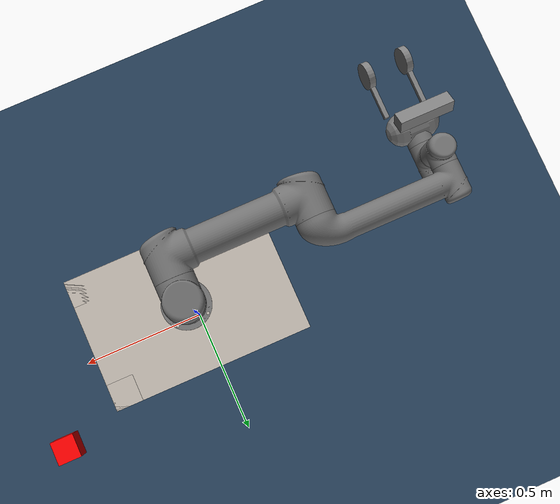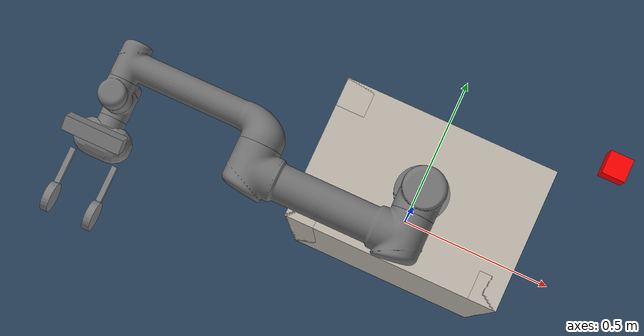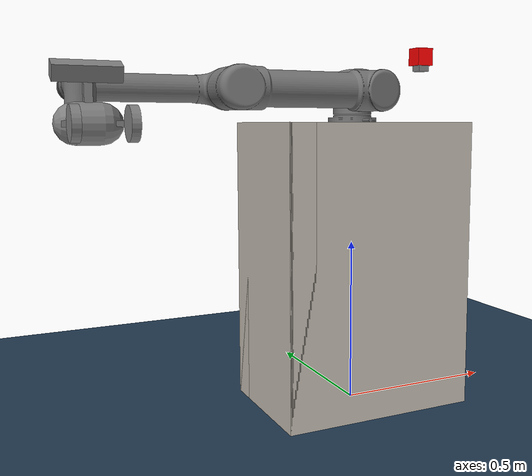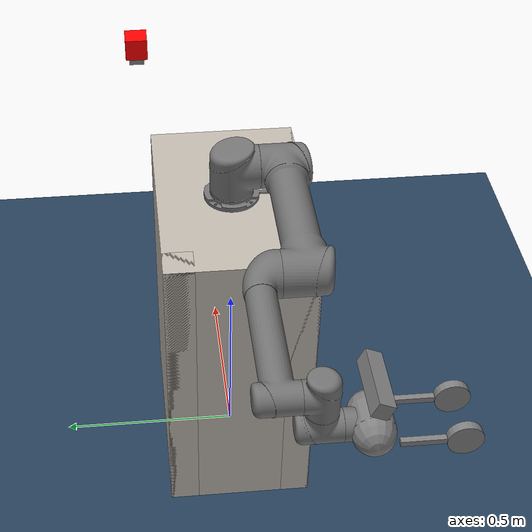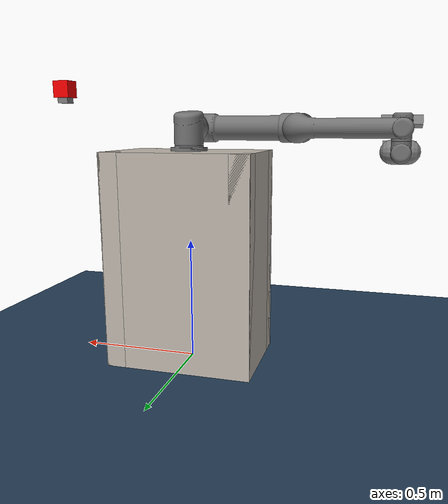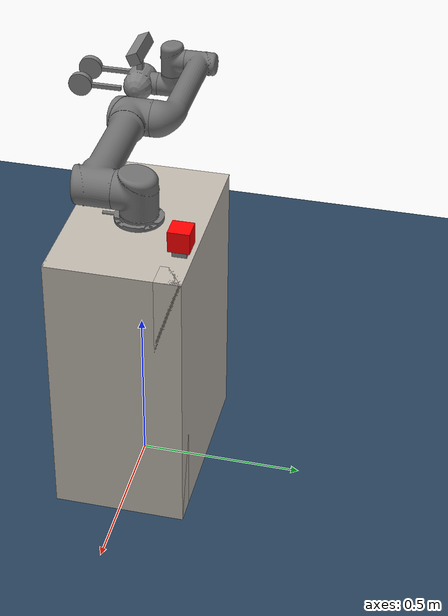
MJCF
<mujoco model="ur5gripper">
    <compiler angle="radian"
              inertiafromgeom="true"
              texturedir="textures/"
              meshdir="mesh/visual/"/>
    <option timestep="1e-2"
            iterations="30"
            tolerance="1e-10"
            impratio="20"/>
    <size njmax="600" nconmax="150" nstack="300000"/>

    <default>
        <site rgba="0.8 0.6 0.7 0.3" type="ellipsoid" group="3"/>
        <geom contype='1' conaffinity='1' condim='4'  margin="1e-3" solref=".01 1" solimp=".99 .99 .01" />
        <joint armature="0.01" damping=".1"/>
        <default class="UR5">
            <joint damping='65'/>
        </default>
        <default class="UR5e">
            <joint damping='45'/>
        </default>
        <default class="GRIPPER">
            <joint damping='15'/>
        </default>
    </default>

    <visual>
        <map fogstart="3" fogend="5" znear="0.05"/>
        <quality shadowsize="2048"/>
        <scale framelength="0.1"
               framewidth="0.005"
               contactwidth="0.1"
               contactheight="0.005"
               forcewidth="0.01"
               />
    </visual>

    <!--Assets-->
    <asset>
        <!--Meshes-->
        <mesh name="base"           file="base.stl"     />
        <mesh name="shoulder"       file="shoulder.stl" />
        <mesh name="upperarm"       file="upperarm.stl" />
        <mesh name="forearm"        file="forearm.stl"  />
        <mesh name="wrist1"         file="wrist1.stl"   />
        <mesh name="wrist2"         file="wrist2.stl"   />
        <mesh name="wrist3"         file="wrist3.stl"   />
        <mesh name="gripperpalm"    file="palm.STL"     />
        <mesh name="link_0"         file="link_0.STL"   />
        <mesh name="link_1"         file="link_1.STL"   />
        <mesh name="link_2"         file="link_2.STL"   />
        <mesh name="link_3"         file="link_3.STL"   />
        <!--Textures-->
        <texture name="ur5_tex"     type="2d"       builtin="flat" height="32" width="32" rgb1="0.45 0.45 0.45" />
        <texture name="gripper_tex" type="2d"       builtin="flat" height="32" width="32" rgb1="0.45 0.45 0.45" rgb2="0 0 0"/>
        <texture name="bench_tex"   type="2d"       builtin="flat" height="32" width="32" rgb1="0.7 0.7 0.7" />
        <texture name="sky_tex"     type="skybox"   builtin="gradient" width="100" height="100" rgb1="1 1 1" rgb2="0.3 0.3 0.8" />
        <texture name="texgeom"     type="cube"     builtin="flat" mark="cross" width="127" height="1278" rgb1="0.8 0.6 0.4" rgb2="0.8 0.6 0.4" markrgb="1 1 1" random="0.01" />
        <texture name="floor_tex"   type="2d"        builtin="checker" rgb1=".2 .3 .4" rgb2=".1 .2 .3" width="100" height="100" />
        <texture name="wood"        type="cube"     file="wood2.png"/>
        <texture name="metal"        type="cube"     file="metal2.png"/>
        <!--Materials-->
        <material name="ur5_mat"        texture="ur5_tex"   shininess="0.9" specular="0.75" reflectance="0.3"/>
        <material name="gripper_mat"    texture="gripper_tex"   shininess="0.9" specular="0.75" reflectance="0.4"/>
        <material name='floor_mat'      texture="floor_tex"  shininess="0.8" texrepeat="10 10" specular="0.7"  reflectance="0.5" />
        <material name='geom'           texture="texgeom"   texuniform="true" />
        <material name="bench_mat"      texture="metal"   shininess="0.1" specular="0.5" reflectance="0.2"/>
        <material name="tablecube"      texture="wood" rgba=".8 .8 .8 1"/>
    </asset>

    <!--Contacts-->
    <contact>
        <exclude body1="box_link" body2="base_link"/>
		<exclude body1="base_link" body2="shoulder_link"/>
		<exclude body1="shoulder_link" body2="upper_arm_link"/>
        <exclude body1="upper_arm_link" body2="forearm_link"/>
		<exclude body1="forearm_link" body2="wrist_1_link"/>
		<exclude body1="wrist_1_link" body2="wrist_2_link"/>
        <exclude body1="wrist_2_link" body2="wrist_3_link"/>
        <exclude body1="ee_link" body2="wrist_3_link"/>
        <exclude body1="ee_link" body2="gripperpalm"/>
        <exclude body1='gripperpalm' body2='wrist_3_link' />
        <exclude body1='gripperpalm' body2='wrist_2_link' />
        <exclude body1='gripperpalm' body2='wrist_1_link' />
        <exclude body1='gripperpalm' body2='forearm_link' />
        <exclude body1='gripperpalm' body2='upper_arm_link' />

    </contact>

    <!--MODEL DESCRIPTION-->
    <worldbody>
        <!--Lighting parameters-->
        <light name="light3" mode="targetbody" target="box_link" directional="true" pos="1 1 3" />

        <!--Floor Property-->
        <geom name='floor' material="floor_mat" pos='0 0 0' size='2.5 2.5 0.1'  type='plane' />

        <!--Robot UR5-->
        <body name="box_link" pos="0 0 0.435">
            <geom size=".3 .2 .435" type="box" material="bench_mat"/>
            <geom size=".29 .19 .03" pos ="0 0 0.4" type="box" material="bench_mat"/>
            <geom size=".29 .19 .03" pos ="0 0 -0.2" type="box" material="bench_mat"/>
            <geom size=".04 .04 .435" pos =".26 .16 0" type="box" material="bench_mat"/>
            <geom size=".04 .04 .435" pos ="-.26 .16 0" type="box" material="bench_mat"/>
            <geom size=".04 .04 .435" pos =".26 -.16 0" type="box" material="bench_mat"/>
            <geom size=".04 .04 .435" pos ="-.26 -.16 0" type="box" material="bench_mat"/>
            <inertial pos="0 0 0" mass="1000" diaginertia="0 0 0" />
            <body name="base_link" pos="0 0 0.435" >
                <inertial pos="0 0 0" quat="0.5 0.5 -0.5 0.5" mass="4" diaginertia="0.0072 0.00443333 0.00443333" />
                <geom type="mesh"  mesh="base" material="ur5_mat"/>
                <body name="shoulder_link" pos="0 0 0.089159" quat='0 0 0 1' >
                    <inertial pos="0 0 0" mass="3.7" diaginertia="0.0102675 0.0102675 0.00666" />
                    <joint name="shoulder_pan_joint" class="UR5" pos="0 0 0" axis="0 0 1" limited="true" range="-3.14159 3.14159" />
                    <geom type="mesh"  mesh="shoulder" material="ur5_mat"/>
                    <body name="upper_arm_link" pos="0 0.13585 0" quat="0.707107 0 0.707107 0">
                        <inertial pos="0 0 0.28" mass="8.393" diaginertia="0.226891 0.226891 0.0151074" />
                        <joint name="shoulder_lift_joint" class="UR5" pos="0 0 0" axis="0 1 0" limited="true" range="-3.14159 0" /> <!--Range= -3.14159 3.14159-->
                        <geom type="mesh"  mesh="upperarm" material="ur5_mat"/>
                        <body name="forearm_link" pos="0 -0.1197 0.425">
                            <inertial pos="0 0 0.25" mass="2.275" diaginertia="0.0494433 0.0494433 0.004095" />
                            <joint name="elbow_joint" class="UR5" pos="0 0 0" axis="0 1 0" limited="true" range="-3.14159 3.14159" />
                            <geom type="mesh"  mesh="forearm" material="ur5_mat"/>
                            <body name="wrist_1_link" pos="0 0 0.39225" quat="0.707107 0 0.707107 0">
                                <inertial pos="0 0 0" quat="0.5 0.5 -0.5 0.5" mass="1.219" diaginertia="0.21942 0.111173 0.111173" />
                                <joint name="wrist_1_joint" class="UR5e" pos="0 0 0" axis="0 1 0" limited="true" range="-3.14159 3.14159" />
                                <geom type="mesh"  mesh="wrist1" material="ur5_mat"/>
                                <body name="wrist_2_link" pos="0 0.093 0">
                                    <inertial pos="0 0 0" quat="0.5 0.5 -0.5 0.5" mass="1.219" diaginertia="0.21942 0.111173 0.111173" />
                                    <joint name="wrist_2_joint" class="UR5e" pos="0 0 0" axis="0 0 1" limited="true" range="-3.14159 3.14159" />
                                    <geom type="mesh"  mesh="wrist2" material="ur5_mat"/>
                                    <body name="wrist_3_link" pos="0 0 0.09465">
                                        <inertial pos="0 0 0" quat="0.5 0.5 -0.5 0.5" mass="0.1879" diaginertia="0.033822 0.0171365 0.0171365" />
                                        <joint name="wrist_3_joint" class="UR5e" pos="0 0 0" axis="0 1 0" limited="true" range="-3.14159 3.14159" />
                                        <geom type="mesh"  mesh="wrist3" material="ur5_mat"/>
                                        <body name="ee_link" pos="0 0.0823 0" quat="0.707107 0 0 0.707107">
                                            <inertial pos="-0.01 0 0" mass="0.001" diaginertia="1.66667e-08 1.66667e-08 1.66667e-08" />
                                            <geom size="0.005 0.005 0.005" pos="-0.01 0 0" type="box" rgba='1 0 0 1' />
                                        </body>
                                        <!-- GRIPPER -->
                                        <body name='gripperpalm' pos='0 0.11 0' quat='0 0 1 0' >
                                            <geom pos='0 0 0' type='capsule' size='0.05 0.03' quat='0.7071068 0 0.7071068 0' condim='3' density='100' />
                                            <geom pos='0 0 0.05' type='box' size='0.01 0.01 0.05' condim='3' />
                                            <body name='camera' pos='0 0 0.12' euler="20 0 0" >
                                                <geom pos='0 0 0' type='box' size='0.08 0.02 0.02' />
                                                <camera name='c1' euler="0 0 0" fovy="90" pos="0 .01 .01">
                                                </camera>
                                            </body>

                                            <body name='left_finger' pos='-0.06 0.05 0' quat='1 0 0 0'>
                                                <joint name='l_f' type='slide' pos='0 0 0' axis='1 0 0' range='0 0.05' damping='.1' limited='true'/>
                                                <geom pos='0 0.05 0' type='box' size='0.007 0.05 0.007' condim='6' friction='1 0.02 0.0005' />
                                                <body name='left_fingertip' pos='0 0.14 0' quat='0.7071068 0 0.7071068 0'>
                                                    <geom pos='0 0 0' type='cylinder' size='0.04 0.01' condim='6' density='1' friction='1 0.04 0.001' solref='1e-4 1' />
                                                    <site pos='0 0 0' type='cylinder' size='0.041 0.011' name='leftFingerMainTouch' />
                                                </body>
                                            </body>

                                            <body name='right_finger' pos='0.06 0.05 0' quat='1 0 0 0'>
                                                <joint name='r_f' type='slide' pos='0 0 0' axis='-1 0 0' range='0 0.05' damping='.1' limited='true'/>
                                                <geom pos='0 0.05 0' type='box' size='0.007 0.05 0.007' condim='6' friction='1 0.02 0.0005' />
                                                <body name='right_fingertip' pos='0 0.14 0' quat='-0.7071068 0 0.7071068 0'>
                                                    <geom pos='0 0 0' type='cylinder' size='0.04 0.01' condim='6' density='1' friction='1 0.04 0.001' solref='1e-4 1' />
                                                    <site pos='0 0 0' type='cylinder' size='0.041 0.011' name='rightFingerMainTouch' />
                                                </body>
                                            </body>
                                        </body>
                                    </body>
                                </body>
                            </body>
                        </body>
                    </body>
                </body>
                <body name="base" pos="0 0 0" quat="1.7949e-09 0 0 -1">
                    <inertial pos="0 0 0" quat="1.7949e-09 0 0 -1" mass="0" diaginertia="0 0 0" />
                </body>
            </body>
        </body>

        <body name='table' pos='0.402 0.2264 1.06' >
            <geom type='box' size='0.02 0.02 0.01' />
        </body>
        <body name='target' pos='0.402 0.2264 1.10' >
            <joint type='free' />
            <geom type='box' size='0.03 0.03 0.03' density='5' rgba='1 0 0 1' solref='5e-4 1' condim='6' />
        </body>

    </worldbody>

    <!--ACTUATORS-->
    <actuator>
        <!--UR5-->
        <position name='shoulder_pan' ctrllimited="true" ctrlrange="-3.14159 3.14159" joint='shoulder_pan_joint' kp="500"/>
        <position name='shoulder_lift' ctrllimited="true" ctrlrange="-3.14159 3.14159" joint='shoulder_lift_joint' kp="500"/>
        <position name='forearm' ctrllimited="true" ctrlrange="-3.14159 3.14159" joint='elbow_joint' kp="500"/>
        <position name='wrist_1' ctrllimited="true" ctrlrange="-3.14159 3.14159" joint='wrist_1_joint' kp="100"/>
        <position name='wrist_2' ctrllimited="true" ctrlrange="-3.14159 3.14159" joint='wrist_2_joint' kp="100"/>
        <position name='wrist_3' ctrllimited="true" ctrlrange="-3.14159 3.14159" joint='wrist_3_joint' kp="100"/>

        <velocity name='shoulder_pan_v' class="UR5" joint='shoulder_pan_joint' kv="10"/>
        <velocity name='shoulder_lift_v' class="UR5" joint='shoulder_lift_joint' />
        <velocity name='forearm_v' class="UR5" joint='elbow_joint' />
        <velocity name='wrist_1_v' class="UR5" joint='wrist_1_joint' />
        <velocity name='wrist_2_v' class="UR5" joint='wrist_2_joint'/>
        <velocity name='wrist_3_v' class="UR5" joint='wrist_3_joint'/>
        <!--Gripper-->
        <position name='gripper' joint="l_f" />
        <velocity name='gripper_v' class="GRIPPER" joint='l_f' />
    </actuator>

    <equality>
        <joint name='fingers' joint1="r_f" joint2="l_f" polycoef='0 1 0 0 0' />
    </equality>

    <sensor>
        <touch name='lf_main' site='leftFingerMainTouch' />
        <touch name='rf_main' site='rightFingerMainTouch' />
    </sensor>
</mujoco>
